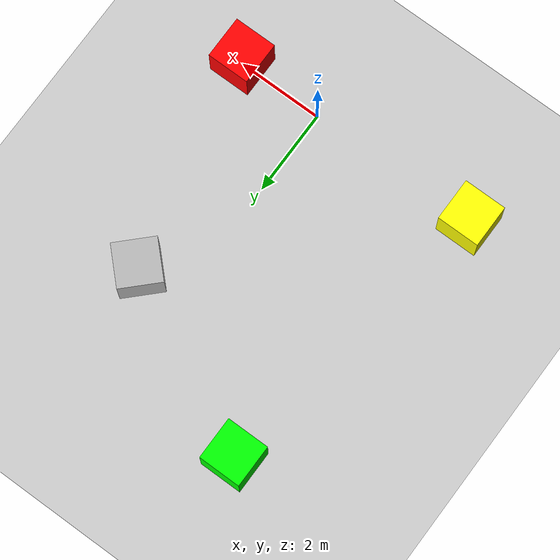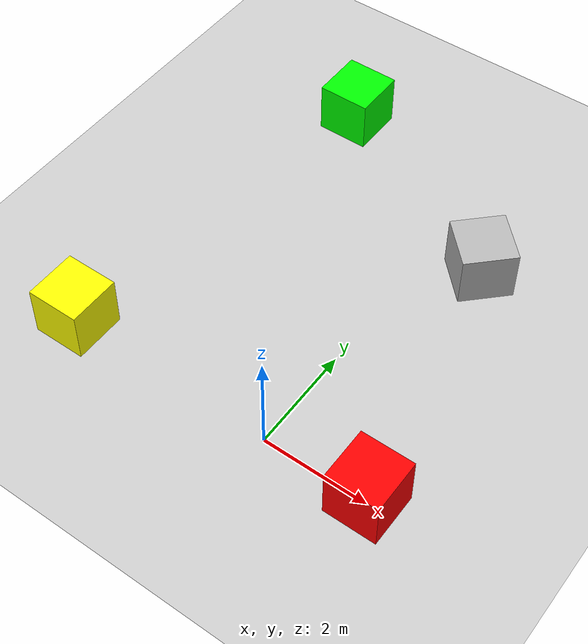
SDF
<sdf version="1.7">
 <world name="default">
  <light name="sun" type="directional">
   <pose>0 0 10 0 -0 0</pose>
   <diffuse>0.8 0.8 0.8 1</diffuse>
   <specular>0.2 0.2 0.2 1</specular>
   <attenuation>
    <range>1000</range>
    <constant>0.9</constant>
    <linear>0.01</linear>
    <quadratic>0.001</quadratic>
   </attenuation>
   <direction>-0.5 0.1 -0.9</direction>
   <spot><inner_angle>0</inner_angle><outer_angle>0</outer_angle><falloff>0</falloff></spot>
  </light>
  <model name="ground_plane">
   <static>1</static>
   <link name="link">
    <collision name="collision">
     <geometry><plane><normal>0 0 1</normal><size>100 100</size></plane></geometry>
     <surface>
      <contact><collide_bitmask>65535</collide_bitmask></contact>
      <friction><ode><mu>100</mu><mu2>50</mu2></ode></friction>
     </surface>
    </collision>
    <visual name="visual">
     <cast_shadows>0</cast_shadows>
     <geometry><plane><normal>0 0 1</normal><size>100 100</size></plane></geometry>
     <material>
      <script><uri>file://media/materials/scripts/gazebo.material</uri><name>Gazebo/Grey</name></script>
     </material>
    </visual>
   </link>
  </model>
  <gravity>0 0 -9.8</gravity>
  <magnetic_field>6e-06 2.3e-05 -4.2e-05</magnetic_field>
  <atmosphere type="adiabatic"/>
  <physics type="ode">
   <max_step_size>0.001</max_step_size>
   <real_time_factor>1</real_time_factor>
   <real_time_update_rate>1000</real_time_update_rate>
  </physics>
  <scene><ambient>0.4 0.4 0.4 1</ambient><background>0.7 0.7 0.7 1</background><shadows>1</shadows></scene>
  <spherical_coordinates>
   <surface_model>EARTH_WGS84</surface_model>
   <latitude_deg>0</latitude_deg>
   <longitude_deg>0</longitude_deg>
   <elevation>0</elevation>
   <heading_deg>0</heading_deg>
  </spherical_coordinates>
  <include><name>red_cube</name><uri>model://red_cube</uri><pose>2 0 0.5 0 0 0</pose></include>
  <include><name>yellow_cube</name><uri>model://yellow_cube</uri><pose>-4 0 0.5 0 0 0</pose></include>
  <include><name>blue_cube</name><uri>model://blue_cube</uri><pose>1 5 0.5 0 0 0.785</pose></include>
  <include><name>green_cube</name><uri>model://green_cube</uri><pose>-3 7 0.5 0 0 0</pose></include>
 </world>
</sdf>

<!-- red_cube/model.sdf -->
<sdf version="1.6">
  <model name="red_cube">
    <!-- Cube Position -->
    <pose>0 0 0 0 0 0</pose>
    <static>true</static>
    <link name="link">
      <visual name="visual">
        <geometry>
          <box>
            <!-- Cube Size -->
            <size>1 1 1</size>
          </box>
        </geometry>
        <material>
          <!-- Cube Color -->
          <ambient>1 0 0 1</ambient>
        </material>
      </visual>
      <collision name="collision">
        <geometry>
          <box>
            <!-- Cube Size -->
            <size>1 1 1</size>
          </box>
        </geometry>
      </collision>
    </link>
  </model>
</sdf>

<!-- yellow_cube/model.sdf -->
<sdf version="1.6">
    <model name="yellow_cube">
      <pose>0 0 0 0 0 0</pose> <!-- Cube Position -->
      <static>true</static>
      <link name="link">
        <visual name="visual">
          <geometry>
            <box>
              <size>1 1 1</size> <!-- Cube Size -->
            </box>
          </geometry>
          <material>
            <ambient>1 1 0 1</ambient> <!-- Cube Color -->
          </material>
        </visual>
        <collision name="collision">
          <geometry>
            <box>
              <size>1 1 1</size> <!-- Cube Size -->
            </box>
          </geometry>
        </collision>
      </link>
    </model>
</sdf>

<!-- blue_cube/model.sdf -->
<sdf version="1.4">
  <model name="blue_cube">
    <pose>0 0 0.0 0 0 0</pose>
    <static>false</static>
    <link name="cube_link">
      <inertial>
        <mass>0.001</mass>
        <inertia> <!-- inertias are tricky to compute -->
          <!-- http://gazebosim.org/tutorials?tut=inertia&cat=build_robot -->
          <ixx>0.000083</ixx>       <!-- for a box: ixx = 0.083 * mass * (y*y + z*z) -->
          <ixy>0.0</ixy>         <!-- for a box: ixy = 0 -->
          <ixz>0.0</ixz>         <!-- for a box: ixz = 0 -->
          <iyy>0.000083</iyy>       <!-- for a box: iyy = 0.083 * mass * (x*x + z*z) -->
          <iyz>0.0</iyz>         <!-- for a box: iyz = 0 -->
          <izz>0.000083</izz>       <!-- for a box: izz = 0.083 * mass * (x*x + y*y) -->
        </inertia>
      </inertial>
      <collision name="collision">
        <geometry>
          <box>
            <size>1 1 1</size>
          </box>
        </geometry>
      </collision>
      <visual name="visual">
        <geometry>
          <box>
            <size>1 1 1</size>
          </box>
        </geometry>
      </visual>
    </link>
    <gazebo reference="cube_link">
      <material>Gazebo/Blue</material>
    </gazebo>
  </model>
</sdf>

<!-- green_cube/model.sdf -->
<sdf version="1.6">
    <model name="green_cube">
      <pose>0 0 0 0 0 0</pose> <!-- Cube Position -->
      <static>true</static>
      <link name="link">
        <visual name="visual">
          <geometry>
            <box>
              <size>1 1 1</size> <!-- Cube Size -->
            </box>
          </geometry>
          <material>
            <ambient>0 1 0 1</ambient> <!-- Cube Color -->
          </material>
        </visual>
        <collision name="collision">
          <geometry>
            <box>
              <size>1 1 1</size> <!-- Cube Size -->
            </box>
          </geometry>
        </collision>
      </link>
    </model>
</sdf>
